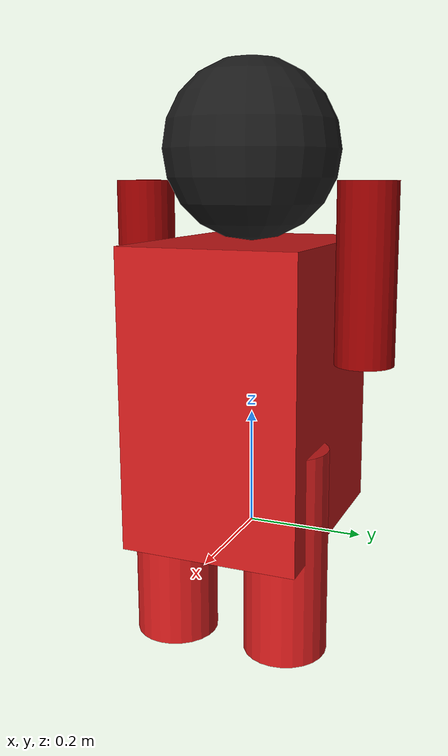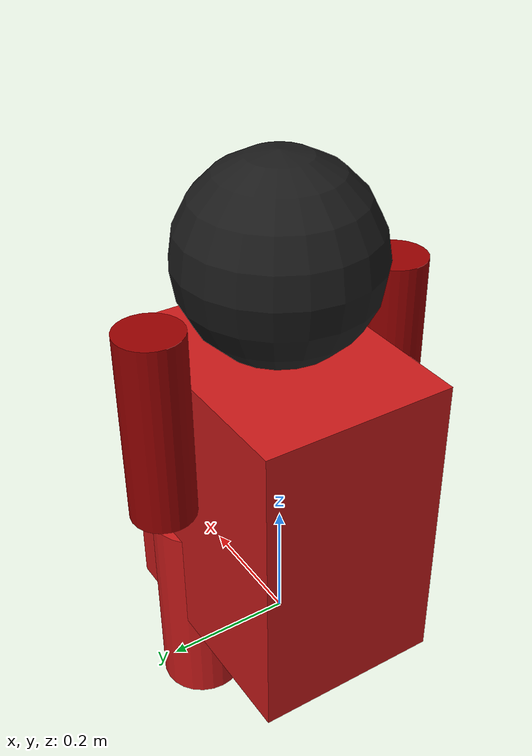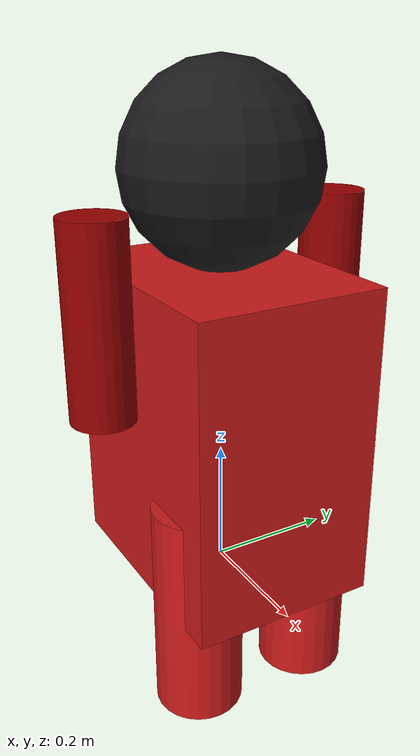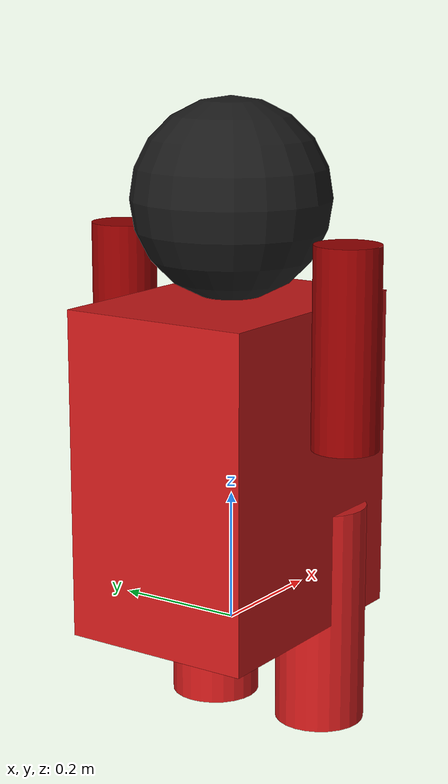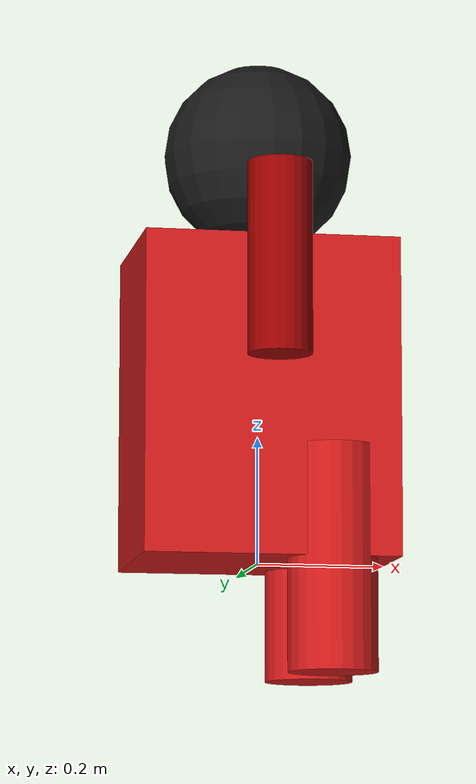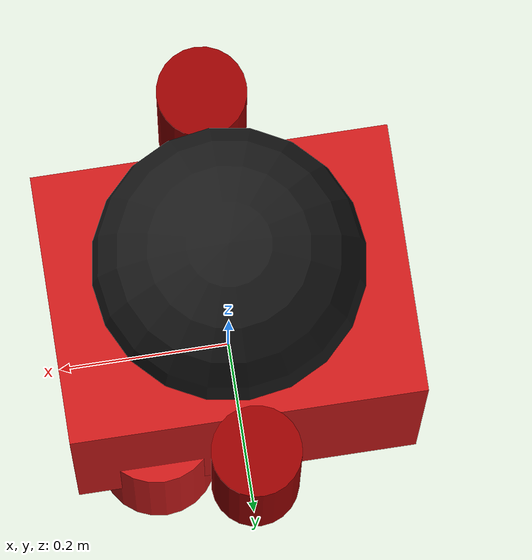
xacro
<?xml version="1.0"?>
<robot xmlns:xacro="http://ros.org/wiki/xacro" name="enemy_unit">

  <!-- Root link (dummy, no inertial) -->
  <link name="base_link"/>

  <!-- Base (torso) -->
  <link name="enemy_torso">
    <visual>
      <geometry>
        <box size="0.4 0.3 0.5"/>
      </geometry>
      <material name="enemy_red">
        <color rgba="0.8 0.1 0.1 1.0"/>
      </material>
    </visual>
  </link>

  <!-- Connect root -> torso -->
  <joint name="root_to_torso" type="fixed">
    <parent link="base_link"/>
    <child link="enemy_torso"/>
    <origin xyz="0 0 0.25" rpy="0 0 0"/>
  </joint>

  <!-- Head -->
  <link name="enemy_head">
    <visual>
      <geometry>
        <sphere radius="0.15"/>
      </geometry>
      <material name="black">
        <color rgba="0.1 0.1 0.1 1.0"/>
      </material>
    </visual>
  </link>
  <joint name="torso_to_head" type="fixed">
    <parent link="enemy_torso"/>
    <child link="enemy_head"/>
    <origin xyz="0 0 0.4" rpy="0 0 0"/>
  </joint>

  <!-- Left Arm -->
  <link name="enemy_arm_left">
    <visual>
      <geometry>
        <cylinder length="0.3" radius="0.05"/>
      </geometry>
      <material name="dark_red">
        <color rgba="0.6 0.0 0.0 1.0"/>
      </material>
    </visual>
  </link>
  <joint name="torso_to_arm_left" type="fixed">
    <parent link="enemy_torso"/>
    <child link="enemy_arm_left"/>
    <origin xyz="0.0 0.2 0.2" rpy="0 0 1.57"/>
  </joint>

  <!-- Right Arm -->
  <link name="enemy_arm_right">
    <visual>
      <geometry>
        <cylinder length="0.3" radius="0.05"/>
      </geometry>
      <material name="dark_red"/>
    </visual>
  </link>
  <joint name="torso_to_arm_right" type="fixed">
    <parent link="enemy_torso"/>
    <child link="enemy_arm_right"/>
    <origin xyz="0.0 -0.2 0.2" rpy="0 0 1.57"/>
  </joint>

  <!-- Left Leg -->
  <link name="enemy_leg_left">
    <visual>
      <geometry>
        <cylinder length="0.35" radius="0.07"/>
      </geometry>
      <material name="enemy_red"/>
    </visual>
  </link>
  <joint name="torso_to_leg_left" type="fixed">
    <parent link="enemy_torso"/>
    <child link="enemy_leg_left"/>
    <origin xyz="0.1 0.1 -0.25" rpy="0 0 0"/>
  </joint>

  <!-- Right Leg -->
  <link name="enemy_leg_right">
    <visual>
      <geometry>
        <cylinder length="0.35" radius="0.07"/>
      </geometry>
      <material name="enemy_red"/>
    </visual>
  </link>
  <joint name="torso_to_leg_right" type="fixed">
    <parent link="enemy_torso"/>
    <child link="enemy_leg_right"/>
    <origin xyz="0.1 -0.1 -0.25" rpy="0 0 0"/>
  </joint>

</robot>
